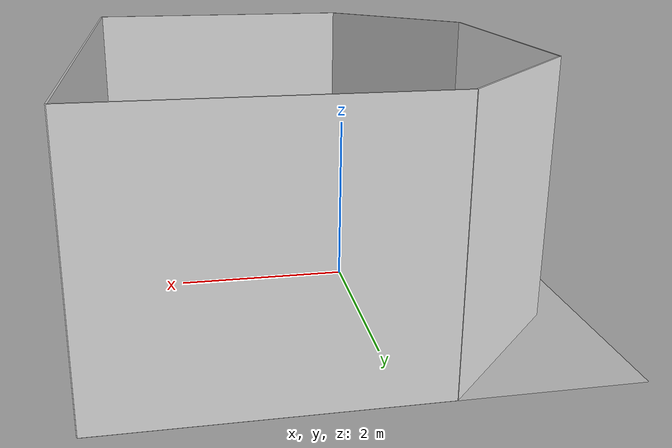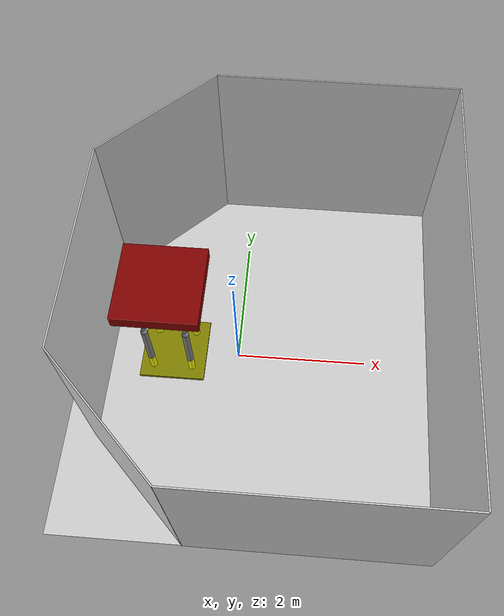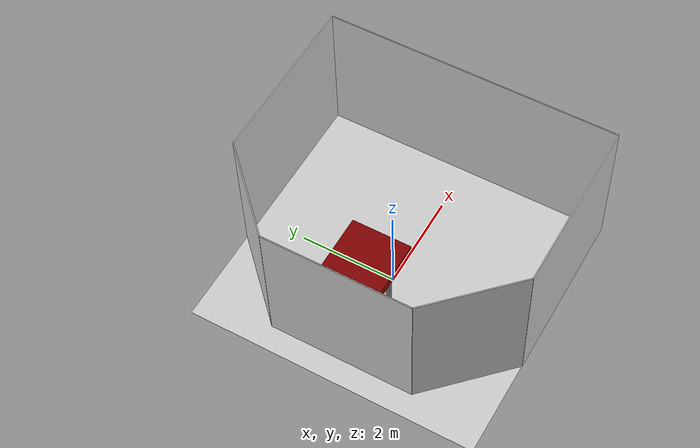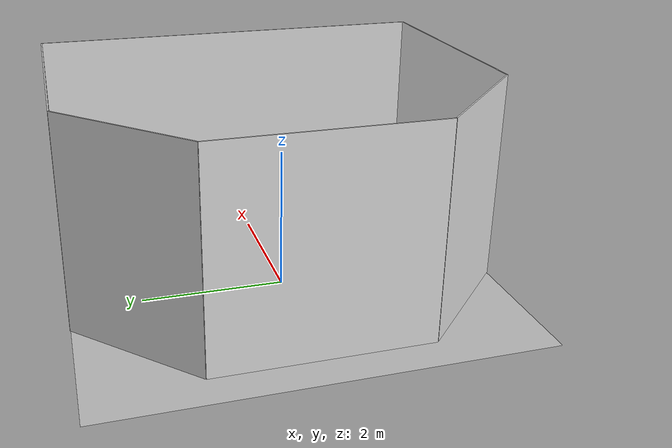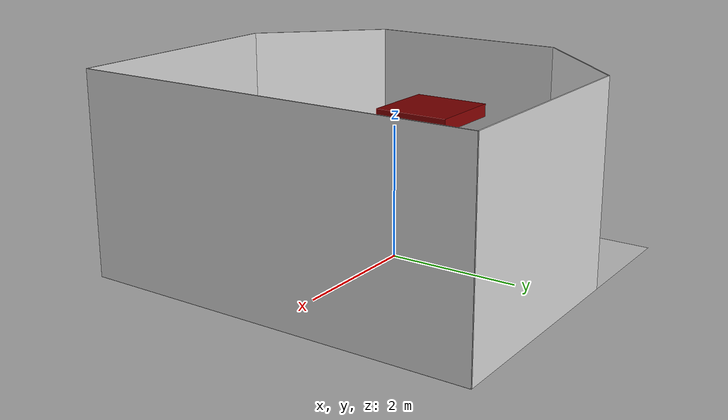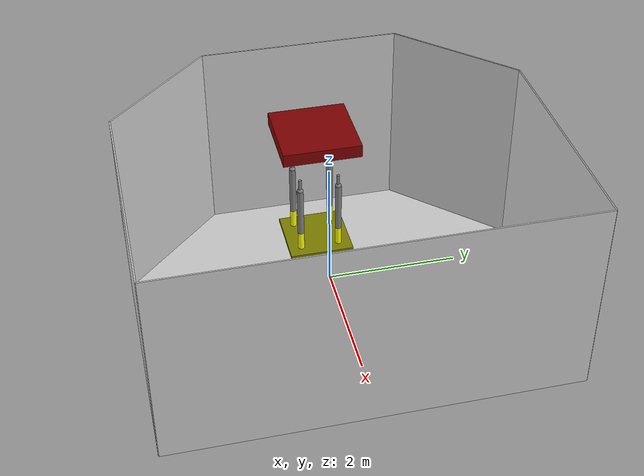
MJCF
<mujoco model="base">
  <compiler angle="radian" meshdir="meshes/" inertiagrouprange="0 0" autolimits="true" />
  <option impratio="20" cone="elliptic" density="1.2" viscosity="0.00002" timestep="0.002" />
  <size nconmax="5000" njmax="5000" />

  <asset>
  <texture builtin="gradient" height="256" rgb1=".9 .9 1." rgb2=".2 .3 .4" type="skybox" width="256" />
    <texture file="/home/wireless/miniconda3/envs/th_torch/lib/python3.10/site-packages/robosuite/models/assets/arenas/../textures/light-gray-floor-tile.png" type="2d" name="texplane" />
    <material name="floorplane" reflectance="0.01" shininess="0.0" specular="0.0" texrepeat="2 2" texture="texplane" texuniform="true" />

    <texture file="/home/wireless/miniconda3/envs/th_torch/lib/python3.10/site-packages/robosuite/models/assets/arenas/../textures/ceramic.png" type="cube" name="tex-ceramic" />
    <material name="table_ceramic" reflectance="0.0" shininess="0.0" specular="0.2" texrepeat="1 1" texture="tex-ceramic" />

    <texture file="/home/wireless/miniconda3/envs/th_torch/lib/python3.10/site-packages/robosuite/models/assets/arenas/../textures/steel-brushed.png" type="cube" name="tex-steel-brushed" />
    <material name="table_legs_metal" reflectance="0.8" shininess="0.8" texrepeat="1 1" texture="tex-steel-brushed" />

    <texture file="/home/wireless/miniconda3/envs/th_torch/lib/python3.10/site-packages/robosuite/models/assets/arenas/../textures/light-gray-plaster.png" type="2d" name="tex-light-gray-plaster" />
    <material name="walls_mat" reflectance="0.0" shininess="0.1" specular="0.1" texrepeat="3 3" texture="tex-light-gray-plaster" texuniform="true" />

    <texture name="textable" builtin="flat" height="512" width="512" rgb1="0.5 0.5 0.5" rgb2="0.5 0.5 0.5" />
    <material name="table_mat" texture="textable" />

  </asset>

  <visual>
    <map znear="0.001" />
  </visual>

  <actuator>
  <position kv="500" name="1_actuator_joint" joint="robot1_vertical_joint" /><position kp="10000" kv="600" name="1_actuator_joint2" joint="robot1_vertical_joint2" /><position kv="500" name="2_actuator_joint" joint="robot2_vertical_joint" /><position kp="10000" kv="600" name="2_actuator_joint2" joint="robot2_vertical_joint2" /><position kv="500" name="3_actuator_joint" joint="robot3_vertical_joint" /><position kp="10000" kv="600" name="3_actuator_joint2" joint="robot3_vertical_joint2" /><position kv="500" name="4_actuator_joint" joint="robot4_vertical_joint" /><position kp="10000" kv="600" name="4_actuator_joint2" joint="robot4_vertical_joint2" /></actuator>

  <worldbody>
  <geom condim="3" group="1" material="floorplane" name="floor" pos="0.0 0.0 0.0" size="3 3 .125" type="plane" />

    <geom pos="-1.25 2.25 1.5" quat="0.6532815 0.6532815 0.2705981 0.2705981" size="1.06 1.5 0.01" type="box" conaffinity="0" contype="0" group="1" name="wall_leftcorner_visual" material="walls_mat" />
    <geom pos="-1.25 -2.25 1.5" quat="0.6532815 0.6532815 -0.2705981 -0.2705981" size="1.06 1.5 0.01" type="box" conaffinity="0" contype="0" group="1" name="wall_rightcorner_visual" material="walls_mat" />
    <geom pos="1.25 3 1.5" quat="0.7071 0.7071 0 0" size="1.75 1.5 0.01" type="box" conaffinity="0" contype="0" group="1" name="wall_left_visual" material="walls_mat" />
    <geom pos="1.25 -3 1.5" quat="0.7071 -0.7071 0 0" size="1.75 1.5 0.01" type="box" conaffinity="0" contype="0" group="1" name="wall_right_visual" material="walls_mat" />
    <geom pos="-2 0 1.5" quat="0.5 0.5 0.5 0.5" size="1.5 1.5 0.01" type="box" conaffinity="0" contype="0" group="1" name="wall_rear_visual" material="walls_mat" />
    <geom pos="3 0 1.5" quat="0.5 0.5 -0.5 -0.5" size="3 1.5 0.01" type="box" conaffinity="0" contype="0" group="1" name="wall_front_visual" material="walls_mat" />

    <body name="table" pos="-1.0 0.0 0.07500000000000001">
      <geom pos="0 0 0" size="0.5 0.5 0.025" type="box" group="0" name="table_collision" friction="1 0.005 0.0001" rgba="0.5 0.5 0 1" />
      <geom pos="0 0 0" size="0.5 0.5 0.025" type="box" conaffinity="0" contype="0" group="1" name="table_visual" material="table_ceramic" />
      <site pos="0.0 0.0 0.025" name="table_top" size="0.001 0.001 0.001" rgba="0 0 0 0" />

      <geom pos="0 0 0" size="0.0001 0.0001" type="cylinder" conaffinity="0" contype="0" group="1" name="table_leg1_visual" material="table_legs_metal" rgba="1 0 0 0" />
      <geom pos="0 0 0" size="0.0001 0.0001" type="cylinder" conaffinity="0" contype="0" group="1" name="table_leg2_visual" material="table_legs_metal" rgba="1 0 0 0" />
      <geom pos="0 0 0" size="0.0001 0.0001" type="cylinder" conaffinity="0" contype="0" group="1" name="table_leg3_visual" material="table_legs_metal" rgba="1 0 0 0" />
      <geom pos="0 0 0" size="0.0001 0.0001" type="cylinder" conaffinity="0" contype="0" group="1" name="table_leg4_visual" material="table_legs_metal" rgba="1 0 0 0" />
    </body>
    <light pos="1.0 1.0 1.5" dir="-0.2 -0.2 -1" specular="0.3 0.3 0.3" directional="true" castshadow="false" />

    <camera mode="fixed" name="frontview" pos="1.6 0 1.45" quat="0.56 0.43 0.43 0.56" />

    <camera mode="fixed" name="birdview" pos="-0.2 0 3.0" quat="0.7071 0 0 0.7071" />

    <camera mode="fixed" name="agentview" pos="0.5 0 1.35" quat="0.653 0.271 0.271 0.653" />

    <camera mode="fixed" name="sideview" pos="-0.05651774593317116 1.2761224129427358 1.4879572214102434" quat="0.009905065491771751 0.006877963156909582 0.5912228352893879 0.806418094001364" />

  <body name="robot1" pos="-0.7 0.3 0.1" quat="-0.3827 0 0 0.9239"><body name="robot1_link1" pos="0 0 0"><joint type="slide" axis="0 0 1" pos="0 0 0" range="0 2" name="robot1_vertical_joint" /><geom name="robot1_link1_geom" type="capsule" size="0.05 0.2" pos="0 0 0.1" rgba="1 1 0 1" contype="1" conaffinity="1" /><body name="robot1_link2" pos="0 0 0.5"><joint type="slide" axis="0 0 1" pos="0 0 0" range="0 2" armature="0.01" stiffness="2000" damping="5" name="robot1_vertical_joint2" /><geom name="robot1_link2_geom" type="cylinder" size="0.05 0.4" pos="0 0 0.2" contype="1" conaffinity="1" /><body name="robot1_end_effector" pos="0 0 0.5"><geom name="robot1_ee_geom" type="sphere" size="0.05" pos="0 0 0.1" /><site name="ee_force_site1" type="sphere" pos="0 0 0.1" size="0.05" rgba="0 0 1 1" /></body></body><body name="robot1_guide" pos="0 0 0"><geom name="robot1_guide_geom" type="cylinder" size="0.025 0.9" pos="0 0 0.4" /></body></body></body><body name="robot2" pos="-1.3 0.3 0.1" quat="-0.9239 0 0 0.3827"><body name="robot2_link1" pos="0 0 0"><joint type="slide" axis="0 0 1" pos="0 0 0" range="0 2" name="robot2_vertical_joint" /><geom name="robot2_link1_geom" type="capsule" size="0.05 0.2" pos="0 0 0.1" rgba="1 1 0 1" contype="1" conaffinity="1" /><body name="robot2_link2" pos="0 0 0.5"><joint type="slide" axis="0 0 1" pos="0 0 0" range="0 2" armature="0.01" stiffness="2000" damping="5" name="robot2_vertical_joint2" /><geom name="robot2_link2_geom" type="cylinder" size="0.05 0.4" pos="0 0 0.2" contype="1" conaffinity="1" /><body name="robot2_end_effector" pos="0 0 0.5"><geom name="robot2_ee_geom" type="sphere" size="0.05" pos="0 0 0.1" /><site name="ee_force_site2" type="sphere" pos="0 0 0.1" size="0.05" rgba="0 0 1 1" /></body></body><body name="robot2_guide" pos="0 0 0"><geom name="robot2_guide_geom" type="cylinder" size="0.025 0.9" pos="0 0 0.4" /></body></body></body><body name="robot3" pos="-0.7 -0.3 0.1" quat="0.3827 0 0 0.9239"><body name="robot3_link1" pos="0 0 0"><joint type="slide" axis="0 0 1" pos="0 0 0" range="0 2" name="robot3_vertical_joint" /><geom name="robot3_link1_geom" type="capsule" size="0.05 0.2" pos="0 0 0.1" rgba="1 1 0 1" contype="1" conaffinity="1" /><body name="robot3_link2" pos="0 0 0.5"><joint type="slide" axis="0 0 1" pos="0 0 0" range="0 2" armature="0.01" stiffness="2000" damping="5" name="robot3_vertical_joint2" /><geom name="robot3_link2_geom" type="cylinder" size="0.05 0.4" pos="0 0 0.2" contype="1" conaffinity="1" /><body name="robot3_end_effector" pos="0 0 0.5"><geom name="robot3_ee_geom" type="sphere" size="0.05" pos="0 0 0.1" /><site name="ee_force_site3" type="sphere" pos="0 0 0.1" size="0.05" rgba="0 0 1 1" /></body></body><body name="robot3_guide" pos="0 0 0"><geom name="robot3_guide_geom" type="cylinder" size="0.025 0.9" pos="0 0 0.4" /></body></body></body><body name="robot4" pos="-1.3 -0.3 0.1" quat="0.9239 0 0 0.3827"><body name="robot4_link1" pos="0 0 0"><joint type="slide" axis="0 0 1" pos="0 0 0" range="0 2" name="robot4_vertical_joint" /><geom name="robot4_link1_geom" type="capsule" size="0.05 0.2" pos="0 0 0.1" rgba="1 1 0 1" contype="1" conaffinity="1" /><body name="robot4_link2" pos="0 0 0.5"><joint type="slide" axis="0 0 1" pos="0 0 0" range="0 2" armature="0.01" stiffness="2000" damping="5" name="robot4_vertical_joint2" /><geom name="robot4_link2_geom" type="cylinder" size="0.05 0.4" pos="0 0 0.2" contype="1" conaffinity="1" /><body name="robot4_end_effector" pos="0 0 0.5"><geom name="robot4_ee_geom" type="sphere" size="0.05" pos="0 0 0.1" /><site name="ee_force_site4" type="sphere" pos="0 0 0.1" size="0.05" rgba="0 0 1 1" /></body></body><body name="robot4_guide" pos="0 0 0"><geom name="robot4_guide_geom" type="cylinder" size="0.025 0.9" pos="0 0 0.4" /></body></body></body><body pos="-1 0 2" name="box_main"><geom rgba="0.5 0 0 1" density="1000" friction="1 0.005 0.0001" solref="0.02 1.0" solimp="0.9 0.95 0.001" type="box" size="0.6 0.6 0.1" pos="0 0 0" group="0" name="box_g0" /><geom conaffinity="0" contype="0" mass="1e-8" rgba="1 0 0 1" type="box" size="0.6 0.6 0.1" pos="0 0 0" group="1" name="box_g0_vis" /><joint type="free" name="box_joint0" /><site type="sphere" group="0" pos="0 0 0" size="0.002 0.002 0.002" rgba="1 0 0 1" name="box_default_site" /></body><camera name="overview" pos="0 0 3" mode="fixed" quat="0.3827 0  0 0.9239" fovy="45" /></worldbody>

  <equality>
  </equality>
<sensor><force name="force_sensor1" site="ee_force_site1" /><force name="force_sensor2" site="ee_force_site2" /><force name="force_sensor3" site="ee_force_site3" /><force name="force_sensor4" site="ee_force_site4" /></sensor><tendon /><contact><pair geom1="robot1_link1_geom" geom2="robot1_link2_geom" /><pair geom1="robot2_link1_geom" geom2="robot2_link2_geom" /><pair geom1="robot3_link1_geom" geom2="robot3_link2_geom" /><pair geom1="robot4_link1_geom" geom2="robot4_link2_geom" /></contact></mujoco>
